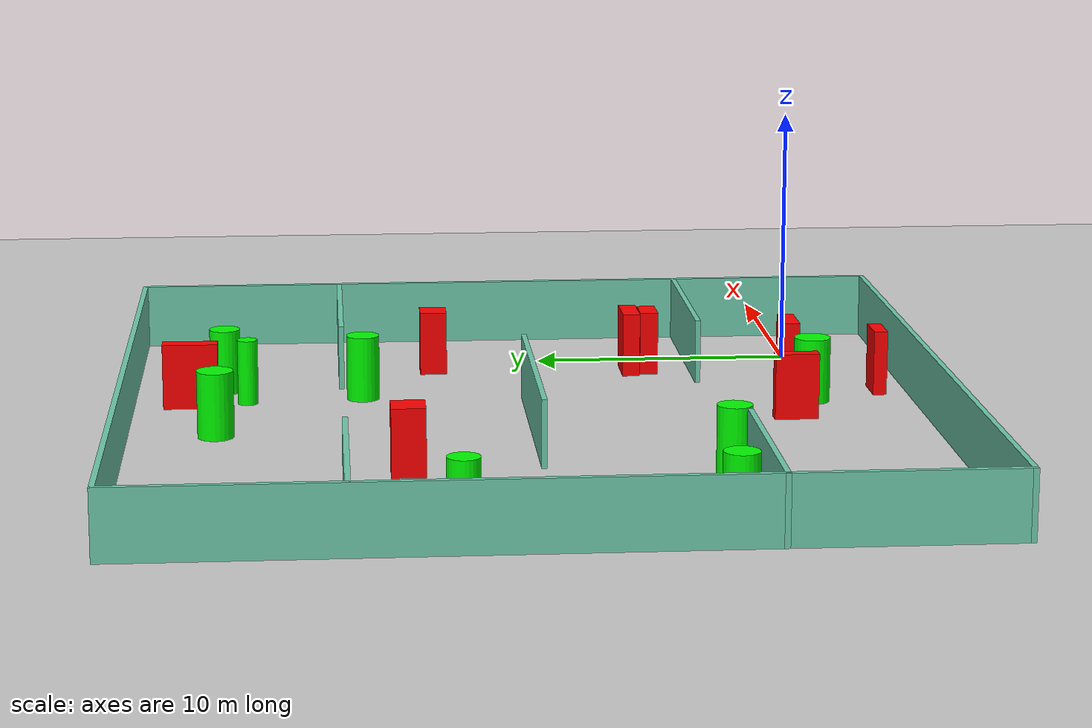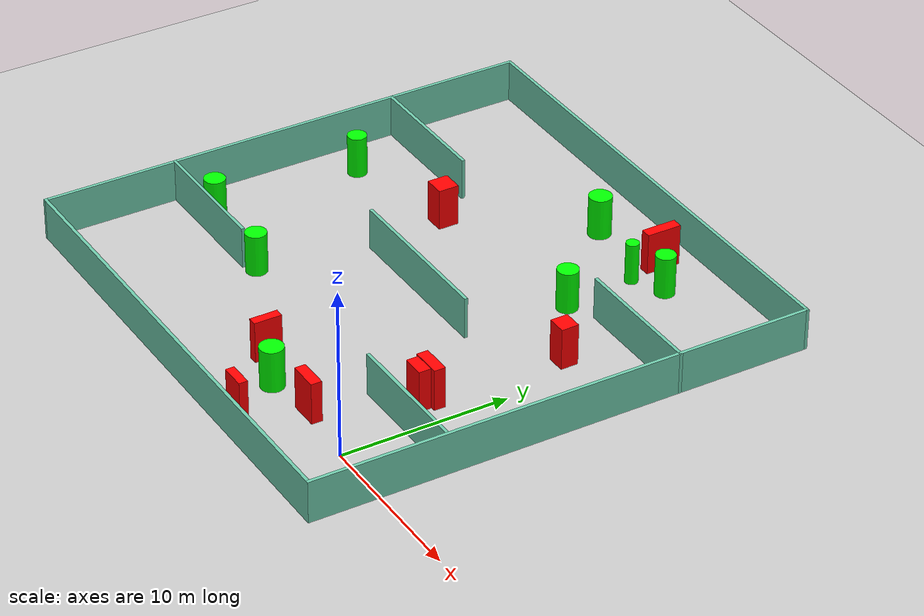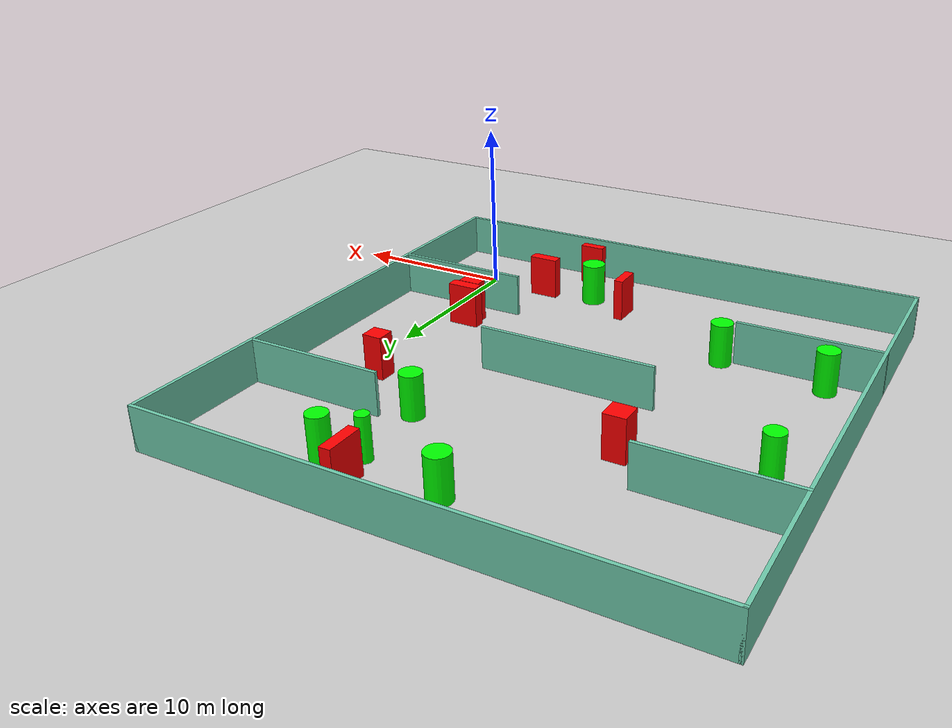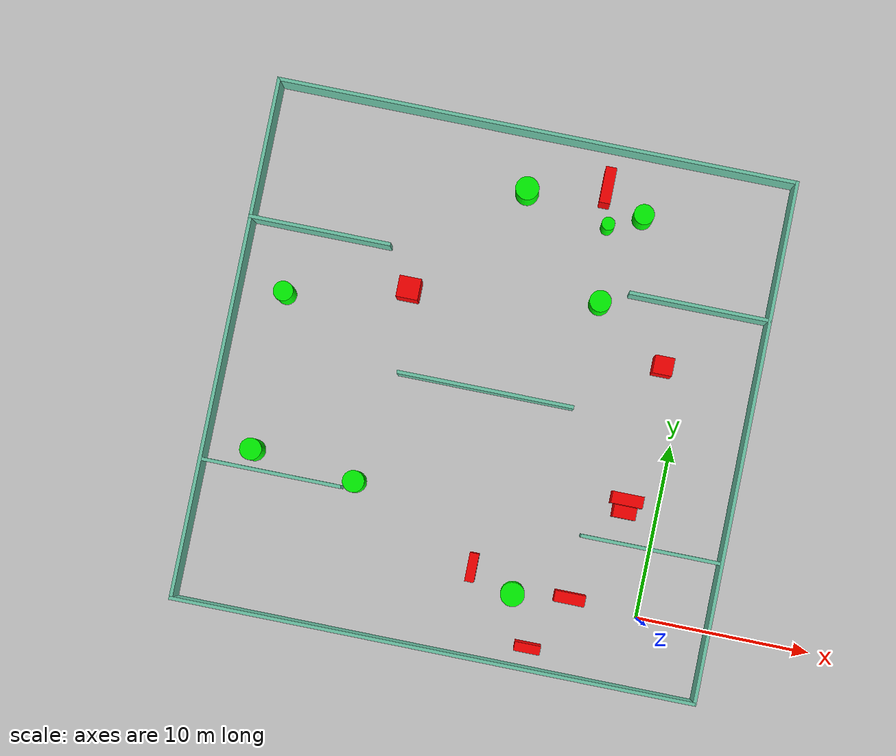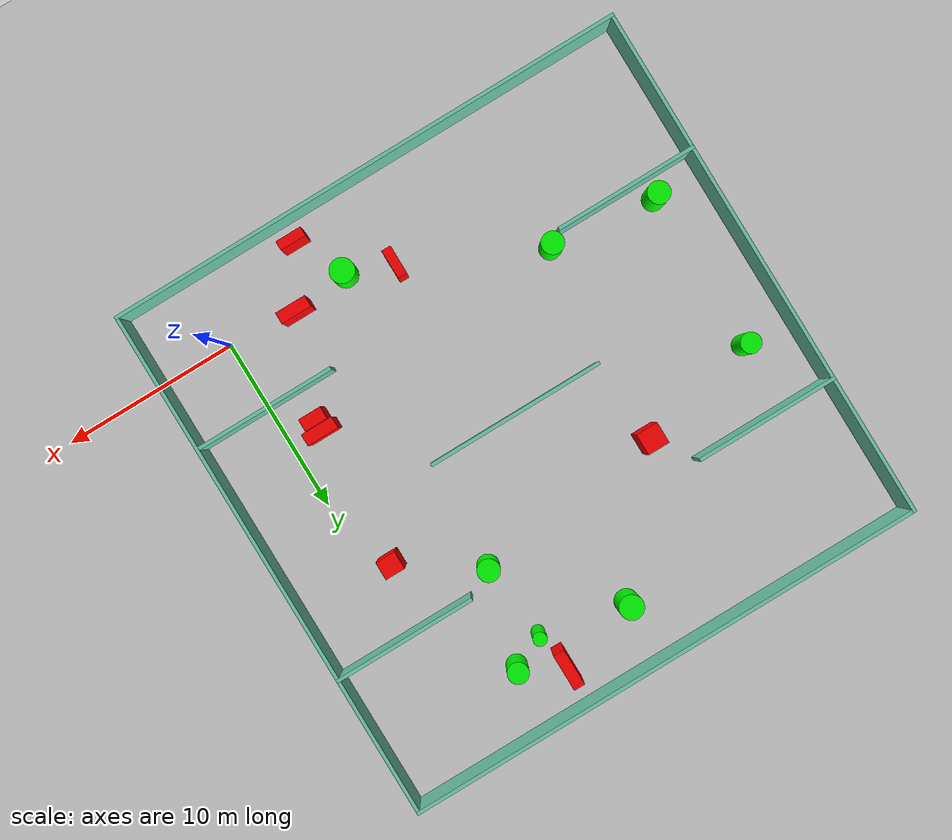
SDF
<sdf version="1.7">
 <world name="default">
  <light name="sun" type="directional">
   <pose>0 0 10 0 -0 0</pose>
   <diffuse>0.8 0.8 0.8 1</diffuse>
   <specular>0.2 0.2 0.2 1</specular>
   <attenuation>
    <range>1000</range>
    <constant>0.9</constant>
    <linear>0.01</linear>
    <quadratic>0.001</quadratic>
   </attenuation>
   <direction>-0.5 0.1 -0.9</direction>
   <spot><inner_angle>0</inner_angle><outer_angle>0</outer_angle><falloff>0</falloff></spot>
  </light>
  <model name="ground_plane">
   <static>1</static>
   <link name="link">
    <collision name="collision">
     <geometry><plane><normal>0 0 1</normal><size>100 100</size></plane></geometry>
     <surface>
      <contact><collide_bitmask>65535</collide_bitmask></contact>
      <friction><ode><mu>100</mu><mu2>50</mu2></ode></friction>
     </surface>
    </collision>
    <visual name="visual">
     <cast_shadows>0</cast_shadows>
     <geometry><plane><normal>0 0 1</normal><size>100 100</size></plane></geometry>
     <material>
      <script><uri>file://media/materials/scripts/gazebo.material</uri><name>Gazebo/Grey</name></script>
     </material>
    </visual>
   </link>
  </model>
  <gravity>0 0 -9.8</gravity>
  <magnetic_field>6e-06 2.3e-05 -4.2e-05</magnetic_field>
  <atmosphere type="adiabatic"/>
  <physics type="ode">
   <max_step_size>0.001</max_step_size>
   <real_time_factor>1</real_time_factor>
   <real_time_update_rate>1000</real_time_update_rate>
  </physics>
  <scene><ambient>0.4 0.4 0.4 1</ambient><background>0.7 0.7 0.7 1</background><shadows>1</shadows></scene>
  <spherical_coordinates>
   <surface_model>EARTH_WGS84</surface_model>
   <latitude_deg>0</latitude_deg>
   <longitude_deg>0</longitude_deg>
   <elevation>0</elevation>
   <heading_deg>0</heading_deg>
  </spherical_coordinates>
  <model name="my_base_walls">
   <link name="Wall_10">
    <collision name="Wall_10_Collision">
     <geometry><box><size>8.2 0.2 2.5</size></box></geometry>
     <pose>0 0 1.25 0 -0 0</pose>
    </collision>
    <visual name="Wall_10_Visual">
     <pose>0 0 1.25 0 -0 0</pose>
     <geometry><box><size>8.2 0.2 2.5</size></box></geometry>
     <material>
      <script><uri>file://media/materials/scripts/gazebo.material</uri><name>Gazebo/Grey</name></script>
      <ambient>0.435294 0.796078 0.67451 1</ambient>
     </material>
     <meta><layer>0</layer></meta>
    </visual>
    <pose>-11 -7 0 0 -0 0</pose>
   </link>
   <link name="Wall_12">
    <collision name="Wall_12_Collision">
     <geometry><box><size>8.2 0.2 2.5</size></box></geometry>
     <pose>0 0 1.25 0 -0 0</pose>
    </collision>
    <visual name="Wall_12_Visual">
     <pose>0 0 1.25 0 -0 0</pose>
     <geometry><box><size>8.2 0.2 2.5</size></box></geometry>
     <material>
      <script><uri>file://media/materials/scripts/gazebo.material</uri><name>Gazebo/Grey</name></script>
      <ambient>0.435294 0.796078 0.67451 1</ambient>
     </material>
     <meta><layer>0</layer></meta>
    </visual>
    <pose>-11 7 0 0 -0 0</pose>
   </link>
   <link name="Wall_14">
    <collision name="Wall_14_Collision">
     <geometry><box><size>8.2 0.2 2.5</size></box></geometry>
     <pose>0 0 1.25 0 -0 0</pose>
    </collision>
    <visual name="Wall_14_Visual">
     <pose>0 0 1.25 0 -0 0</pose>
     <geometry><box><size>8.2 0.2 2.5</size></box></geometry>
     <material>
      <script><uri>file://media/materials/scripts/gazebo.material</uri><name>Gazebo/Grey</name></script>
      <ambient>0.435294 0.796078 0.67451 1</ambient>
     </material>
     <meta><layer>0</layer></meta>
    </visual>
    <pose>11 7 0 0 -0 3.14159</pose>
   </link>
   <link name="Wall_16">
    <collision name="Wall_16_Collision">
     <geometry><box><size>10.2 0.2 2.5</size></box></geometry>
     <pose>0 0 1.25 0 -0 0</pose>
    </collision>
    <visual name="Wall_16_Visual">
     <pose>0 0 1.25 0 -0 0</pose>
     <geometry><box><size>10.2 0.2 2.5</size></box></geometry>
     <material>
      <script><uri>file://media/materials/scripts/gazebo.material</uri><name>Gazebo/Grey</name></script>
      <ambient>0.435294 0.796078 0.67451 1</ambient>
     </material>
     <meta><layer>0</layer></meta>
    </visual>
    <pose>0 0 0 0 -0 3.14159</pose>
   </link>
   <link name="Wall_2">
    <collision name="Wall_2_Collision">
     <geometry><box><size>30.2 0.2 2.5</size></box></geometry>
     <pose>0 0 1.25 0 -0 0</pose>
    </collision>
    <visual name="Wall_2_Visual">
     <pose>0 0 1.25 0 -0 0</pose>
     <geometry><box><size>30.2 0.2 2.5</size></box></geometry>
     <material>
      <script><uri>file://media/materials/scripts/gazebo.material</uri><name>Gazebo/Grey</name></script>
      <ambient>0.435294 0.796078 0.67451 1</ambient>
     </material>
     <meta><layer>0</layer></meta>
    </visual>
    <pose>0 -15 0 0 -0 3.14159</pose>
   </link>
   <link name="Wall_3">
    <collision name="Wall_3_Collision">
     <geometry><box><size>30.2 0.2 2.5</size></box></geometry>
     <pose>0 0 1.25 0 -0 0</pose>
    </collision>
    <visual name="Wall_3_Visual">
     <pose>0 0 1.25 0 -0 0</pose>
     <geometry><box><size>30.2 0.2 2.5</size></box></geometry>
     <material>
      <script><uri>file://media/materials/scripts/gazebo.material</uri><name>Gazebo/Grey</name></script>
      <ambient>0.435294 0.796078 0.67451 1</ambient>
     </material>
     <meta><layer>0</layer></meta>
    </visual>
    <pose>-15 0 0 0 -0 1.5708</pose>
   </link>
   <link name="Wall_4">
    <collision name="Wall_4_Collision">
     <geometry><box><size>30.2 0.2 2.5</size></box></geometry>
     <pose>0 0 1.25 0 -0 0</pose>
    </collision>
    <visual name="Wall_4_Visual">
     <pose>0 0 1.25 0 -0 0</pose>
     <geometry><box><size>30.2 0.2 2.5</size></box></geometry>
     <material>
      <script><uri>file://media/materials/scripts/gazebo.material</uri><name>Gazebo/Grey</name></script>
      <ambient>0.435294 0.796078 0.67451 1</ambient>
     </material>
     <meta><layer>0</layer></meta>
    </visual>
    <pose>0 15 0 0 -0 0</pose>
   </link>
   <link name="Wall_6">
    <collision name="Wall_6_Collision">
     <geometry><box><size>30.2 0.2 2.5</size></box></geometry>
     <pose>0 0 1.25 0 -0 0</pose>
    </collision>
    <visual name="Wall_6_Visual">
     <pose>0 0 1.25 0 -0 0</pose>
     <geometry><box><size>30.2 0.2 2.5</size></box></geometry>
     <material>
      <script><uri>file://media/materials/scripts/gazebo.material</uri><name>Gazebo/Grey</name></script>
      <ambient>0.435294 0.796078 0.67451 1</ambient>
     </material>
     <meta><layer>0</layer></meta>
    </visual>
    <pose>15 0 0 0 -0 1.5708</pose>
   </link>
   <link name="Wall_8">
    <collision name="Wall_8_Collision">
     <geometry><box><size>8.2 0.2 2.5</size></box></geometry>
     <pose>0 0 1.25 0 -0 0</pose>
    </collision>
    <visual name="Wall_8_Visual">
     <pose>0 0 1.25 0 -0 0</pose>
     <geometry><box><size>8.2 0.2 2.5</size></box></geometry>
     <material>
      <script><uri>file://media/materials/scripts/gazebo.material</uri><name>Gazebo/Grey</name></script>
      <ambient>0.435294 0.796078 0.67451 1</ambient>
     </material>
     <meta><layer>0</layer></meta>
    </visual>
    <pose>11 -7 0 0 -0 3.14159</pose>
   </link>
   <static>1</static>
   <pose>-11 11 0 0 -0 0</pose>
  </model>
  <model name="cylinder1">
   <static>1</static>
   <link name="link">
    <inertial>
     <mass>1</mass>
     <inertia><ixx>0.5</ixx><ixy>0</ixy><ixz>0</ixz><iyy>0.5</iyy><iyz>0</iyz><izz>1</izz></inertia>
    </inertial>
    <collision name="collision">
     <geometry><cylinder><radius>0.3850124191380877</radius><length>2.5</length></cylinder></geometry>
    </collision>
    <visual name="visual">
     <geometry><cylinder><radius>0.3850124191380877</radius><length>2.5</length></cylinder></geometry>
     <material>
      <ambient>0 1 0 1</ambient>
      <diffuse>0 1 0 1</diffuse>
      <specular>0.1 0.1 0.1 1</specular>
      <emissive>0 0 0 0</emissive>
     </material>
    </visual>
   </link>
   <pose>-6.035210977206955 21.593325828751404 1.25 0 0 0</pose>
  </model>
  <model name="cylinder2">
   <static>1</static>
   <link name="link">
    <inertial>
     <mass>1</mass>
     <inertia><ixx>0.5</ixx><ixy>0</ixy><ixz>0</ixz><iyy>0.5</iyy><iyz>0</iyz><izz>1</izz></inertia>
    </inertial>
    <collision name="collision">
     <geometry><cylinder><radius>0.6246104996941788</radius><length>2.5</length></cylinder></geometry>
    </collision>
    <visual name="visual">
     <geometry><cylinder><radius>0.6246104996941788</radius><length>2.5</length></cylinder></geometry>
     <material>
      <ambient>0 1 0 1</ambient>
      <diffuse>0 1 0 1</diffuse>
      <specular>0.1 0.1 0.1 1</specular>
      <emissive>0 0 0 0</emissive>
     </material>
    </visual>
   </link>
   <pose>-5.611259221262451 17.18691265435153 1.25 0 0 0</pose>
  </model>
  <model name="cylinder3">
   <static>1</static>
   <link name="link">
    <inertial>
     <mass>1</mass>
     <inertia><ixx>0.5</ixx><ixy>0</ixy><ixz>0</ixz><iyy>0.5</iyy><iyz>0</iyz><izz>1</izz></inertia>
    </inertial>
    <collision name="collision">
     <geometry><cylinder><radius>0.627609959158677</radius><length>2.5</length></cylinder></geometry>
    </collision>
    <visual name="visual">
     <geometry><cylinder><radius>0.627609959158677</radius><length>2.5</length></cylinder></geometry>
     <material>
      <ambient>0 1 0 1</ambient>
      <diffuse>0 1 0 1</diffuse>
      <specular>0.1 0.1 0.1 1</specular>
      <emissive>0 0 0 0</emissive>
     </material>
    </visual>
   </link>
   <pose>-17.26290541810041 4.449626375147109 1.25 0 0 0</pose>
  </model>
  <model name="cylinder4">
   <static>1</static>
   <link name="link">
    <inertial>
     <mass>1</mass>
     <inertia><ixx>0.5</ixx><ixy>0</ixy><ixz>0</ixz><iyy>0.5</iyy><iyz>0</iyz><izz>1</izz></inertia>
    </inertial>
    <collision name="collision">
     <geometry><cylinder><radius>0.6291440183280683</radius><length>2.5</length></cylinder></geometry>
    </collision>
    <visual name="visual">
     <geometry><cylinder><radius>0.6291440183280683</radius><length>2.5</length></cylinder></geometry>
     <material>
      <ambient>0 1 0 1</ambient>
      <diffuse>0 1 0 1</diffuse>
      <specular>0.1 0.1 0.1 1</specular>
      <emissive>0 0 0 0</emissive>
     </material>
    </visual>
   </link>
   <pose>-23.305599302475432 5.08723752269014 1.25 0 0 0</pose>
  </model>
  <model name="cylinder5">
   <static>1</static>
   <link name="link">
    <inertial>
     <mass>1</mass>
     <inertia><ixx>0.5</ixx><ixy>0</ixy><ixz>0</ixz><iyy>0.5</iyy><iyz>0</iyz><izz>1</izz></inertia>
    </inertial>
    <collision name="collision">
     <geometry><cylinder><radius>0.6752705134097229</radius><length>2.5</length></cylinder></geometry>
    </collision>
    <visual name="visual">
     <geometry><cylinder><radius>0.6752705134097229</radius><length>2.5</length></cylinder></geometry>
     <material>
      <ambient>0 1 0 1</ambient>
      <diffuse>0 1 0 1</diffuse>
      <specular>0.1 0.1 0.1 1</specular>
      <emissive>0 0 0 0</emissive>
     </material>
    </visual>
   </link>
   <pose>-10.932677852891807 22.661641527139633 1.25 0 0 0</pose>
  </model>
  <model name="cylinder6">
   <static>1</static>
   <link name="link">
    <inertial>
     <mass>1</mass>
     <inertia><ixx>0.5</ixx><ixy>0</ixy><ixz>0</ixz><iyy>0.5</iyy><iyz>0</iyz><izz>1</izz></inertia>
    </inertial>
    <collision name="collision">
     <geometry><cylinder><radius>0.6900158664974567</radius><length>2.5</length></cylinder></geometry>
    </collision>
    <visual name="visual">
     <geometry><cylinder><radius>0.6900158664974567</radius><length>2.5</length></cylinder></geometry>
     <material>
      <ambient>0 1 0 1</ambient>
      <diffuse>0 1 0 1</diffuse>
      <specular>0.1 0.1 0.1 1</specular>
      <emissive>0 0 0 0</emissive>
     </material>
    </visual>
   </link>
   <pose>-7.217293753223405 -0.0005493140522219164 1.25 0 0 0</pose>
  </model>
  <model name="cylinder7">
   <static>1</static>
   <link name="link">
    <inertial>
     <mass>1</mass>
     <inertia><ixx>0.5</ixx><ixy>0</ixy><ixz>0</ixz><iyy>0.5</iyy><iyz>0</iyz><izz>1</izz></inertia>
    </inertial>
    <collision name="collision">
     <geometry><cylinder><radius>0.5711879198103043</radius><length>2.5</length></cylinder></geometry>
    </collision>
    <visual name="visual">
     <geometry><cylinder><radius>0.5711879198103043</radius><length>2.5</length></cylinder></geometry>
     <material>
      <ambient>0 1 0 1</ambient>
      <diffuse>0 1 0 1</diffuse>
      <specular>0.1 0.1 0.1 1</specular>
      <emissive>0 0 0 0</emissive>
     </material>
    </visual>
   </link>
   <pose>-23.315585976180316 14.200543119325378 1.25 0 0 0</pose>
  </model>
  <model name="cylinder8">
   <static>1</static>
   <link name="link">
    <inertial>
     <mass>1</mass>
     <inertia><ixx>0.5</ixx><ixy>0</ixy><ixz>0</ixz><iyy>0.5</iyy><iyz>0</iyz><izz>1</izz></inertia>
    </inertial>
    <collision name="collision">
     <geometry><cylinder><radius>0.586665738435586</radius><length>2.5</length></cylinder></geometry>
    </collision>
    <visual name="visual">
     <geometry><cylinder><radius>0.586665738435586</radius><length>2.5</length></cylinder></geometry>
     <material>
      <ambient>0 1 0 1</ambient>
      <diffuse>0 1 0 1</diffuse>
      <specular>0.1 0.1 0.1 1</specular>
      <emissive>0 0 0 0</emissive>
     </material>
    </visual>
   </link>
   <pose>-4.150175192554373 22.50795850361296 1.25 0 0 0</pose>
  </model>
  <model name="box1">
   <static>1</static>
   <link name="link">
    <inertial>
     <mass>1</mass>
     <inertia><ixx>0.083</ixx><ixy>0</ixy><ixz>0</ixz><iyy>0.083</iyy><iyz>0</iyz><izz>0.083</izz></inertia>
    </inertial>
    <collision name="collision">
     <geometry><box><size>1.4835103952881552 0.5200731546789263 2.5</size></box></geometry>
    </collision>
    <visual name="visual">
     <geometry><box><size>1.4835103952881552 0.5200731546789263 2.5</size></box></geometry>
     <material>
      <ambient>1 0 0 1</ambient>
      <diffuse>1 0 0 1</diffuse>
      <specular>0.1 0.1 0.1 1</specular>
      <emissive>0 0 0 0</emissive>
     </material>
    </visual>
    <sensor name="my_contact" type="contact">
     <contact><collision>box_collision</collision><topic>__default_topic__</topic></contact>
    </sensor>
   </link>
   <pose>-5.814372410174192 -2.795493160593613 1.25 0 0 0</pose>
  </model>
  <model name="box2">
   <static>1</static>
   <link name="link">
    <inertial>
     <mass>1</mass>
     <inertia><ixx>0.083</ixx><ixy>0</ixy><ixz>0</ixz><iyy>0.083</iyy><iyz>0</iyz><izz>0.083</izz></inertia>
    </inertial>
    <collision name="collision">
     <geometry><box><size>0.6342957945826215 2.0879545841457317 2.5</size></box></geometry>
    </collision>
    <visual name="visual">
     <geometry><box><size>0.6342957945826215 2.0879545841457317 2.5</size></box></geometry>
     <material>
      <ambient>1 0 0 1</ambient>
      <diffuse>1 0 0 1</diffuse>
      <specular>0.1 0.1 0.1 1</specular>
      <emissive>0 0 0 0</emissive>
     </material>
    </visual>
    <sensor name="my_contact" type="contact">
     <contact><collision>box_collision</collision><topic>__default_topic__</topic></contact>
    </sensor>
   </link>
   <pose>-6.477908738468875 23.747202551962125 1.25 0 0 0</pose>
  </model>
  <model name="box3">
   <static>1</static>
   <link name="link">
    <inertial>
     <mass>1</mass>
     <inertia><ixx>0.083</ixx><ixy>0</ixy><ixz>0</ixz><iyy>0.083</iyy><iyz>0</iyz><izz>0.083</izz></inertia>
    </inertial>
    <collision name="collision">
     <geometry><box><size>0.5379665678896478 1.6460383683666997 2.5</size></box></geometry>
    </collision>
    <visual name="visual">
     <geometry><box><size>0.5379665678896478 1.6460383683666997 2.5</size></box></geometry>
     <material>
      <ambient>1 0 0 1</ambient>
      <diffuse>1 0 0 1</diffuse>
      <specular>0.1 0.1 0.1 1</specular>
      <emissive>0 0 0 0</emissive>
     </material>
    </visual>
    <sensor name="my_contact" type="contact">
     <contact><collision>box_collision</collision><topic>__default_topic__</topic></contact>
    </sensor>
   </link>
   <pose>-9.752366465988418 1.025982282480081 1.25 0 0 0</pose>
  </model>
  <model name="box4">
   <static>1</static>
   <link name="link">
    <inertial>
     <mass>1</mass>
     <inertia><ixx>0.083</ixx><ixy>0</ixy><ixz>0</ixz><iyy>0.083</iyy><iyz>0</iyz><izz>0.083</izz></inertia>
    </inertial>
    <collision name="collision">
     <geometry><box><size>1.818175478648196 0.6781416641783835 2.5</size></box></geometry>
    </collision>
    <visual name="visual">
     <geometry><box><size>1.818175478648196 0.6781416641783835 2.5</size></box></geometry>
     <material>
      <ambient>1 0 0 1</ambient>
      <diffuse>1 0 0 1</diffuse>
      <specular>0.1 0.1 0.1 1</specular>
      <emissive>0 0 0 0</emissive>
     </material>
    </visual>
    <sensor name="my_contact" type="contact">
     <contact><collision>box_collision</collision><topic>__default_topic__</topic></contact>
    </sensor>
   </link>
   <pose>-1.9046461856459693 6.489831095380415 1.25 0 0 0</pose>
  </model>
  <model name="box5">
   <static>1</static>
   <link name="link">
    <inertial>
     <mass>1</mass>
     <inertia><ixx>0.083</ixx><ixy>0</ixy><ixz>0</ixz><iyy>0.083</iyy><iyz>0</iyz><izz>0.083</izz></inertia>
    </inertial>
    <collision name="collision">
     <geometry><box><size>1.1323997627032476 1.043157710324122 2.5</size></box></geometry>
    </collision>
    <visual name="visual">
     <geometry><box><size>1.1323997627032476 1.043157710324122 2.5</size></box></geometry>
     <material>
      <ambient>1 0 0 1</ambient>
      <diffuse>1 0 0 1</diffuse>
      <specular>0.1 0.1 0.1 1</specular>
      <emissive>0 0 0 0</emissive>
     </material>
    </visual>
    <sensor name="my_contact" type="contact">
     <contact><collision>box_collision</collision><topic>__default_topic__</topic></contact>
    </sensor>
   </link>
   <pose>-1.3942073392148764 14.320160410701959 1.25 0 0 0</pose>
  </model>
  <model name="box6">
   <static>1</static>
   <link name="link">
    <inertial>
     <mass>1</mass>
     <inertia><ixx>0.083</ixx><ixy>0</ixy><ixz>0</ixz><iyy>0.083</iyy><iyz>0</iyz><izz>0.083</izz></inertia>
    </inertial>
    <collision name="collision">
     <geometry><box><size>1.2539108414795357 1.2273611770268393 2.5</size></box></geometry>
    </collision>
    <visual name="visual">
     <geometry><box><size>1.2539108414795357 1.2273611770268393 2.5</size></box></geometry>
     <material>
      <ambient>1 0 0 1</ambient>
      <diffuse>1 0 0 1</diffuse>
      <specular>0.1 0.1 0.1 1</specular>
      <emissive>0 0 0 0</emissive>
     </material>
    </visual>
    <sensor name="my_contact" type="contact">
     <contact><collision>box_collision</collision><topic>__default_topic__</topic></contact>
    </sensor>
   </link>
   <pose>-16.39981906298 15.790890704170735 1.25 0 0 0</pose>
  </model>
  <model name="box7">
   <static>1</static>
   <link name="link">
    <inertial>
     <mass>1</mass>
     <inertia><ixx>0.083</ixx><ixy>0</ixy><ixz>0</ixz><iyy>0.083</iyy><iyz>0</iyz><izz>0.083</izz></inertia>
    </inertial>
    <collision name="collision">
     <geometry><box><size>1.3208467020105807 0.7115069506247509 2.5</size></box></geometry>
    </collision>
    <visual name="visual">
     <geometry><box><size>1.3208467020105807 0.7115069506247509 2.5</size></box></geometry>
     <material>
      <ambient>1 0 0 1</ambient>
      <diffuse>1 0 0 1</diffuse>
      <specular>0.1 0.1 0.1 1</specular>
      <emissive>0 0 0 0</emissive>
     </material>
    </visual>
    <sensor name="my_contact" type="contact">
     <contact><collision>box_collision</collision><topic>__default_topic__</topic></contact>
    </sensor>
   </link>
   <pose>-1.9290674465891406 5.764257919589188 1.25 0 0 0</pose>
  </model>
  <model name="box8">
   <static>1</static>
   <link name="link">
    <inertial>
     <mass>1</mass>
     <inertia><ixx>0.083</ixx><ixy>0</ixy><ixz>0</ixz><iyy>0.083</iyy><iyz>0</iyz><izz>0.083</izz></inertia>
    </inertial>
    <collision name="collision">
     <geometry><box><size>1.7616940132780001 0.6439997338811024 2.5</size></box></geometry>
    </collision>
    <visual name="visual">
     <geometry><box><size>1.7616940132780001 0.6439997338811024 2.5</size></box></geometry>
     <material>
      <ambient>1 0 0 1</ambient>
      <diffuse>1 0 0 1</diffuse>
      <specular>0.1 0.1 0.1 1</specular>
      <emissive>0 0 0 0</emissive>
     </material>
    </visual>
    <sensor name="my_contact" type="contact">
     <contact><collision>box_collision</collision><topic>__default_topic__</topic></contact>
    </sensor>
   </link>
   <pose>-4.01213181602049 0.4067355169784532 1.25 0 0 0</pose>
  </model>
 </world>
</sdf>
